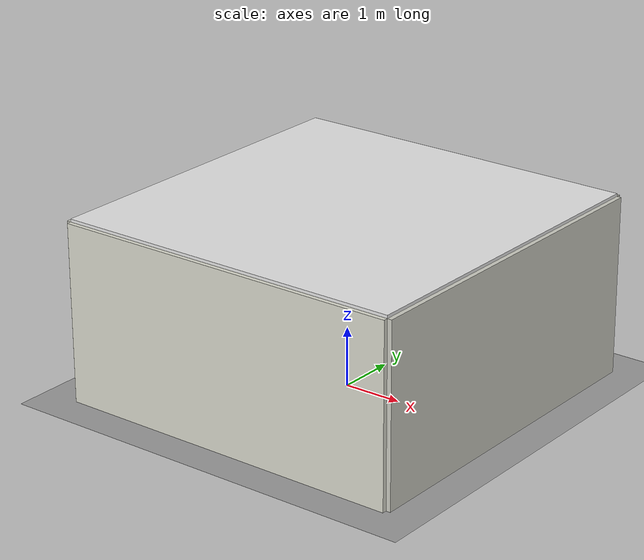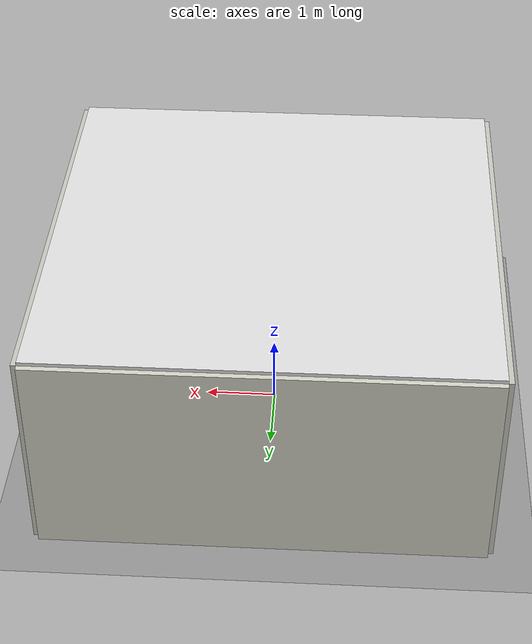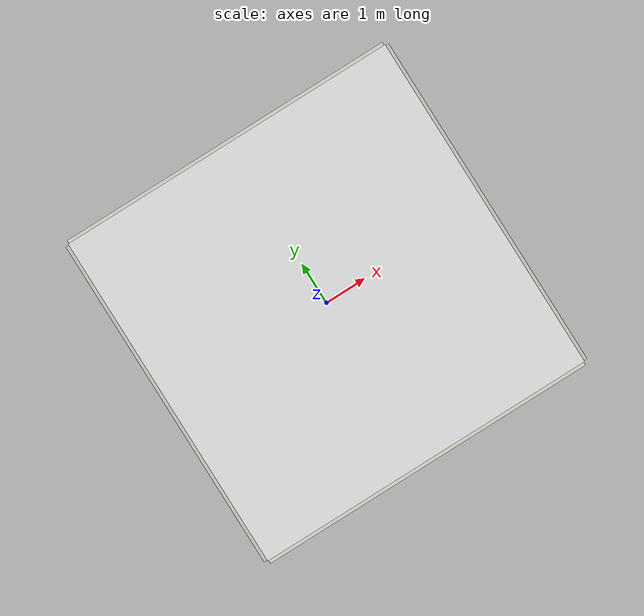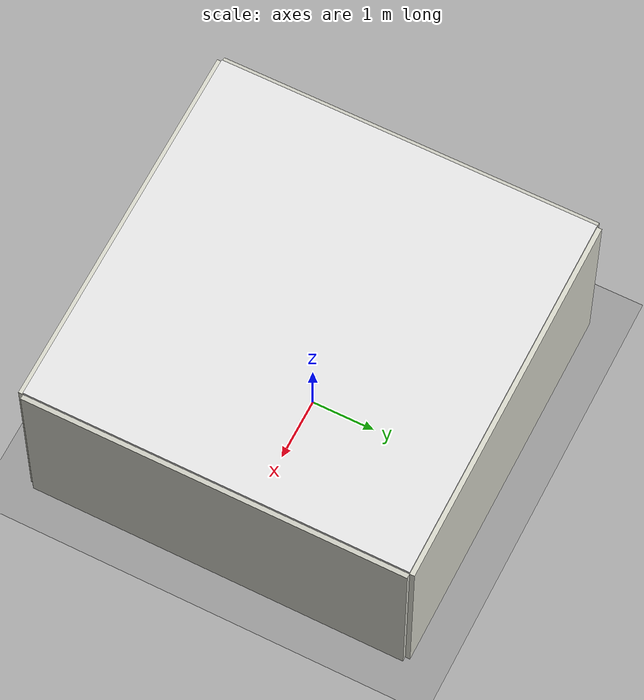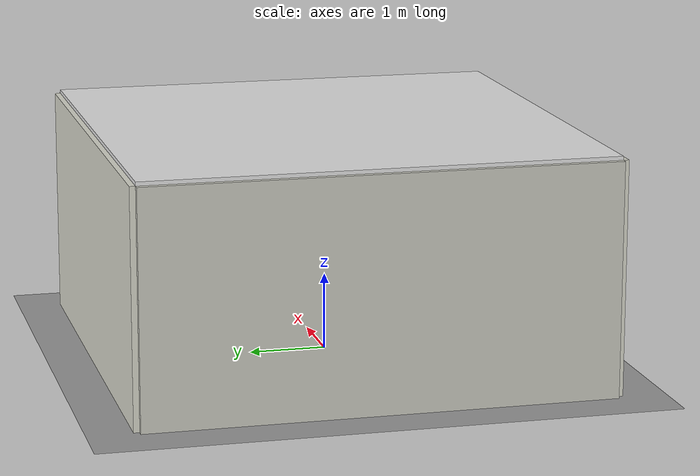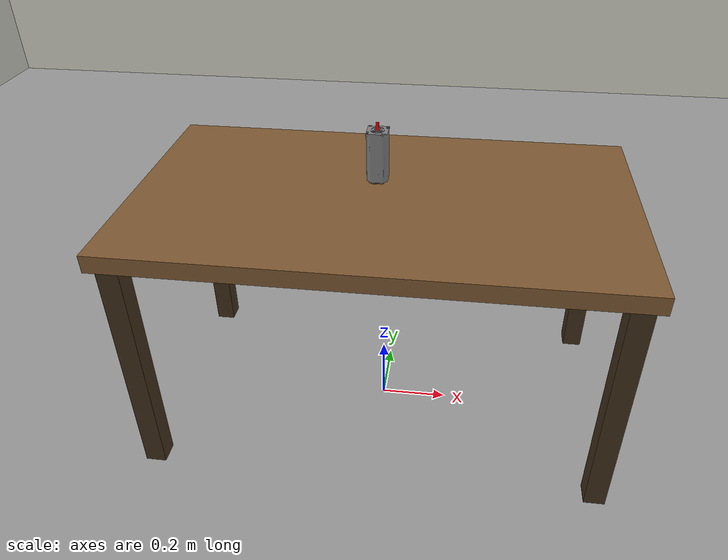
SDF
<?xml version="1.0" ?>
<sdf version="1.9">
  <world name="servo_lab">

    <!-- ── Fizică ──────────────────────────────────────────── -->
    <physics name="1ms" type="ignored">
      <max_step_size>0.001</max_step_size>
      <real_time_factor>1.0</real_time_factor>
    </physics>

    <!-- ── Plugin-uri obligatorii ──────────────────────────── -->
    <plugin filename="gz-sim-physics-system"
            name="gz::sim::systems::Physics"/>
    <plugin filename="gz-sim-scene-broadcaster-system"
            name="gz::sim::systems::SceneBroadcaster"/>
    <plugin filename="gz-sim-user-commands-system"
            name="gz::sim::systems::UserCommands"/>

    <!-- ── Lumina principala (tavan) ───────────────────────── -->
    <light type="directional" name="ceiling_light">
      <pose>0 0 4 0 0 0</pose>
      <cast_shadows>true</cast_shadows>
      <diffuse>0.9 0.9 0.85 1</diffuse>
      <specular>0.3 0.3 0.3 1</specular>
      <direction>0.1 0.1 -1</direction>
    </light>

    <!-- Lumina secundara laterala (umbre mai moi) -->
    <light type="point" name="side_light">
      <pose>-3 2 2.5 0 0 0</pose>
      <cast_shadows>false</cast_shadows>
      <diffuse>0.4 0.4 0.5 1</diffuse>
      <specular>0.1 0.1 0.1 1</specular>
      <attenuation>
        <range>10</range>
        <linear>0.1</linear>
        <quadratic>0.05</quadratic>
      </attenuation>
    </light>

    <!-- ── Podea ────────────────────────────────────────────── -->
    <model name="floor">
      <static>true</static>
      <link name="link">
        <collision name="col">
          <geometry><plane>
            <normal>0 0 1</normal>
            <size>10 10</size>
          </plane></geometry>
        </collision>
        <visual name="vis">
          <geometry><plane>
            <normal>0 0 1</normal>
            <size>10 10</size>
          </plane></geometry>
          <material>
            <ambient>0.55 0.55 0.55 1</ambient>
            <diffuse>0.6 0.6 0.6 1</diffuse>
          </material>
        </visual>
      </link>
    </model>

    <!-- ── Pereti camera 6x5m ───────────────────────────────── -->

    <!-- Perete spate (nord) -->
    <model name="wall_north">
      <static>true</static>
      <pose>0 3.0 1.5 0 0 0</pose>
      <link name="link">
        <collision name="col">
          <geometry><box><size>6 0.15 3</size></box></geometry>
        </collision>
        <visual name="vis">
          <geometry><box><size>6 0.15 3</size></box></geometry>
          <material>
            <ambient>0.82 0.82 0.78 1</ambient>
            <diffuse>0.85 0.85 0.80 1</diffuse>
          </material>
        </visual>
      </link>
    </model>

    <!-- Perete fata (sud) -->
    <model name="wall_south">
      <static>true</static>
      <pose>0 -3.0 1.5 0 0 0</pose>
      <link name="link">
        <collision name="col">
          <geometry><box><size>6 0.15 3</size></box></geometry>
        </collision>
        <visual name="vis">
          <geometry><box><size>6 0.15 3</size></box></geometry>
          <material>
            <ambient>0.82 0.82 0.78 1</ambient>
            <diffuse>0.85 0.85 0.80 1</diffuse>
          </material>
        </visual>
      </link>
    </model>

    <!-- Perete stanga (vest) -->
    <model name="wall_west">
      <static>true</static>
      <pose>-3.0 0 1.5 0 0 0</pose>
      <link name="link">
        <collision name="col">
          <geometry><box><size>0.15 6 3</size></box></geometry>
        </collision>
        <visual name="vis">
          <geometry><box><size>0.15 6 3</size></box></geometry>
          <material>
            <ambient>0.78 0.78 0.75 1</ambient>
            <diffuse>0.80 0.80 0.76 1</diffuse>
          </material>
        </visual>
      </link>
    </model>

    <!-- Perete dreapta (est) -->
    <model name="wall_east">
      <static>true</static>
      <pose>3.0 0 1.5 0 0 0</pose>
      <link name="link">
        <collision name="col">
          <geometry><box><size>0.15 6 3</size></box></geometry>
        </collision>
        <visual name="vis">
          <geometry><box><size>0.15 6 3</size></box></geometry>
          <material>
            <ambient>0.78 0.78 0.75 1</ambient>
            <diffuse>0.80 0.80 0.76 1</diffuse>
          </material>
        </visual>
      </link>
    </model>

    <!-- Tavan -->
    <model name="ceiling">
      <static>true</static>
      <pose>0 0 3.0 0 0 0</pose>
      <link name="link">
        <visual name="vis">
          <geometry><box><size>6 6 0.1</size></box></geometry>
          <material>
            <ambient>0.9 0.9 0.9 1</ambient>
            <diffuse>0.9 0.9 0.9 1</diffuse>
          </material>
        </visual>
      </link>
    </model>

    <!-- ── Masa de laborator la (0,0,0) ─────────────────────── -->
    <!-- Blatul mesei — suprafata la Z=0.75m -->
    <model name="table_top">
      <static>true</static>
      <pose>0 0 0.725 0 0 0</pose>
      <link name="link">
        <collision name="col">
          <geometry><box><size>1.4 0.8 0.05</size></box></geometry>
        </collision>
        <visual name="vis">
          <geometry><box><size>1.4 0.8 0.05</size></box></geometry>
          <material>
            <ambient>0.45 0.32 0.18 1</ambient>
            <diffuse>0.50 0.35 0.20 1</diffuse>
            <specular>0.1 0.1 0.1 1</specular>
          </material>
        </visual>
      </link>
    </model>

    <!-- Picior 1 -->
    <model name="leg_fl">
      <static>true</static>
      <pose>-0.65 -0.35 0.35 0 0 0</pose>
      <link name="link">
        <collision name="col">
          <geometry><box><size>0.06 0.06 0.70</size></box></geometry>
        </collision>
        <visual name="vis">
          <geometry><box><size>0.06 0.06 0.70</size></box></geometry>
          <material><ambient>0.25 0.18 0.10 1</ambient></material>
        </visual>
      </link>
    </model>

    <!-- Picior 2 -->
    <model name="leg_fr">
      <static>true</static>
      <pose>0.65 -0.35 0.35 0 0 0</pose>
      <link name="link">
        <collision name="col">
          <geometry><box><size>0.06 0.06 0.70</size></box></geometry>
        </collision>
        <visual name="vis">
          <geometry><box><size>0.06 0.06 0.70</size></box></geometry>
          <material><ambient>0.25 0.18 0.10 1</ambient></material>
        </visual>
      </link>
    </model>

    <!-- Picior 3 -->
    <model name="leg_bl">
      <static>true</static>
      <pose>-0.65 0.35 0.35 0 0 0</pose>
      <link name="link">
        <collision name="col">
          <geometry><box><size>0.06 0.06 0.70</size></box></geometry>
        </collision>
        <visual name="vis">
          <geometry><box><size>0.06 0.06 0.70</size></box></geometry>
          <material><ambient>0.25 0.18 0.10 1</ambient></material>
        </visual>
      </link>
    </model>

    <!-- Picior 4 -->
    <model name="leg_br">
      <static>true</static>
      <pose>0.65 0.35 0.35 0 0 0</pose>
      <link name="link">
        <collision name="col">
          <geometry><box><size>0.06 0.06 0.70</size></box></geometry>
        </collision>
        <visual name="vis">
          <geometry><box><size>0.06 0.06 0.70</size></box></geometry>
          <material><ambient>0.25 0.18 0.10 1</ambient></material>
        </visual>
      </link>
    </model>

    <!-- ── Servomotor pe masă ────────────────────────────────── -->
    <!-- Z = 0.75 (blat) + 0.04 (jumatate din model) = 0.79     -->
    <include>
      <uri>model://Servomotor</uri>
      <name>servo1</name>
      <pose>0 0 0.79  1.5707963 0 0</pose>
    </include>
    <!-- Lumina de tavan centrala (neon de laborator) -->
    <light type="point" name="lamp_center">
        <pose>0 0 2.8 0 0 0</pose>
        <cast_shadows>false</cast_shadows>
        <diffuse>1.0 1.0 0.95 1</diffuse>
        <specular>0.5 0.5 0.5 1</specular>
        <attenuation>
            <range>8</range>
            <constant>0.3</constant>
            <linear>0.1</linear>
            <quadratic>0.02</quadratic>
        </attenuation>
    </light>

    <!-- Lumina stanga -->
    <light type="point" name="lamp_left">
        <pose>-2 0 2.8 0 0 0</pose>
        <cast_shadows>false</cast_shadows>
        <diffuse>0.9 0.9 0.85 1</diffuse>
        <specular>0.2 0.2 0.2 1</specular>
        <attenuation>
            <range>5</range>
            <constant>0.4</constant>
            <linear>0.15</linear>
            <quadratic>0.03</quadratic>
        </attenuation>
    </light>

    <!-- Lumina dreapta -->
    <light type="point" name="lamp_right">
        <pose>2 0 2.8 0 0 0</pose>
        <cast_shadows>false</cast_shadows>
        <diffuse>0.9 0.9 0.85 1</diffuse>
        <specular>0.2 0.2 0.2 1</specular>
        <attenuation>
            <range>5</range>
            <constant>0.4</constant>
            <linear>0.15</linear>
            <quadratic>0.03</quadratic>
        </attenuation>
    </light>

    <!-- Lumina spot pe masa (accent pe servomotor) -->
    <light type="spot" name="spot_table">
        <pose>0 0 2.5 0 0 0</pose>
        <cast_shadows>true</cast_shadows>
        <diffuse>1.0 0.98 0.90 1</diffuse>
        <specular>0.6 0.6 0.6 1</specular>
        <attenuation>
            <range>4</range>
            <constant>0.1</constant>
            <linear>0.05</linear>
            <quadratic>0.01</quadratic>
        </attenuation>
        <direction>0 0 -1</direction>
        <spot>
            <inner_angle>0.5</inner_angle>
            <outer_angle>1.0</outer_angle>
            <falloff>1.0</falloff>
        </spot>
    </light>
  </world>
</sdf>

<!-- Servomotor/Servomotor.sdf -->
<sdf version="1.9">
  <model name="Servomotor">

    <static>false</static>
    <pose>0 0 0.1  1.5707963 0 0</pose>

    <link name="Body">
      <pose>0.0 0.0 0.0 0.0 0.0 0.0</pose>
      <inertial>
        <mass>1.46388158506161</mass>
        <pose>-0.016912914020850718 0.07683939859768606 2.912172999788752e-05 0.0 0.0 0.0</pose>
        <inertia>
          <ixx>0.0033749567677947463</ixx>
          <iyy>0.0010542073086400126</iyy>
          <izz>0.0032601705672210338</izz>
          <ixy>2.3146486097095666e-07</ixy>
          <iyz>-0.00013469573663171098</iyz>
          <ixz>1.747130457827479e-07</ixz>
        </inertia>
      </inertial>
      <visual name="Body_visual">
        <material>
          <ambient>0.5 0.5 0.5 1</ambient>
          <diffuse>0.5 0.5 0.5 1</diffuse>
        </material>
        <geometry>
          <mesh>
            <uri>model://Servomotor/meshes/Body.stl</uri>
            <scale>0.001 0.001 0.001</scale>
          </mesh>
        </geometry>
      </visual>
      <collision name="Body_collision">
        <geometry>
          <mesh>
            <uri>model://Servomotor/meshes/Body.stl</uri>
            <scale>0.001 0.001 0.001</scale>
          </mesh>
        </geometry>
      </collision>
    </link>

    <link name="shaft_link">
      <pose>-0.016923236526741298 0.1840331226203942 0.02927650166617312
            -6.071532165918836e-17 -7.280422969894831e-16 -1.5707963267949</pose>
      <inertial>
        <mass>0.047723773799398524</mass>
        <pose>0.06196276755784602 -1.170198867226439e-05 -0.026280836211985084 0.0 0.0 0.0</pose>
        <inertia>
          <ixx>4.7458953189731283e-07</ixx>
          <iyy>3.611164100762879e-05</iyy>
          <izz>3.6109679889136394e-05</izz>
          <ixy>-2.362885587022015e-08</ixy>
          <iyz>5.144575578305003e-19</iyz>
          <ixz>-2.0146363689801466e-16</ixz>
        </inertia>
      </inertial>
      <visual name="shaft_visual">
        <material>
          <ambient>1 0 0 1</ambient>
          <diffuse>1 0 0 1</diffuse>
        </material>
        <geometry>
          <mesh>
            <uri>model://Servomotor/meshes/shaft_joint.stl</uri>
            <scale>0.001 0.001 0.001</scale>
          </mesh>
        </geometry>
      </visual>
      <collision name="shaft_collision">
        <geometry>
          <mesh>
            <uri>model://Servomotor/meshes/shaft_joint.stl</uri>
            <scale>0.001 0.001 0.001</scale>
          </mesh>
        </geometry>
      </collision>
    </link>

    <joint name="shaft_joint" type="revolute">
      <pose>0.04450012262039125 2.3652674118995444e-07 -0.026280501666173173 0.0 0.0 0.0</pose>
      <parent>Body</parent>
      <child>shaft_link</child>
      <axis>
        <xyz expressed_in="__model__">0.0 1.0 0.0</xyz>
        <limit>
          <lower>-1e16</lower>
          <upper>1e16</upper>
          <effort>5.0</effort>
          <velocity>10.0</velocity>
        </limit>
        <dynamics>
          <damping>0.01</damping>
          <friction>0.001</friction>
        </dynamics>
      </axis>
    </joint>

    <plugin filename="gz-sim-joint-controller-system"
            name="gz::sim::systems::JointController">
      <joint_name>shaft_joint</joint_name>
      <use_force_commands>false</use_force_commands>
      <p_gain>10.0</p_gain>
    </plugin>

  </model>
</sdf>
